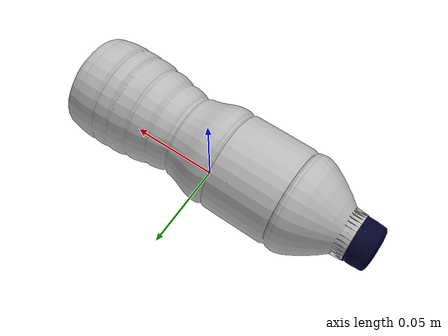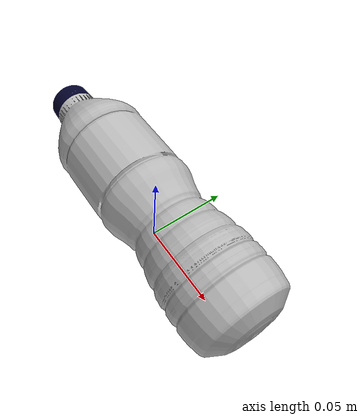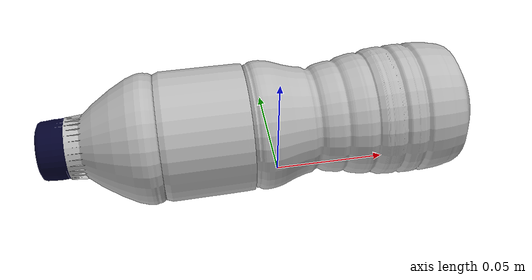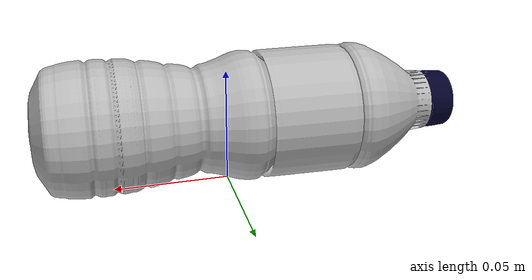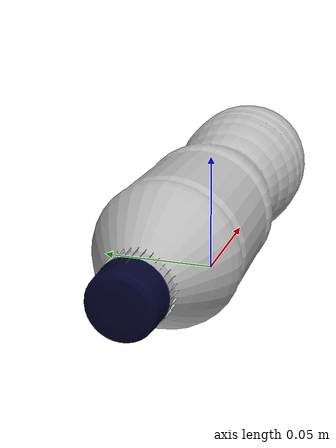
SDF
<?xml version="1.0" ?>
<sdf version="1.6">
  <model name="plastic_bottle_lay">
    <link name="link">

      <inertial>

        <mass>0.1</mass>
        <inertia>
            <ixy>0</ixy>
            <ixz>0</ixz>
            <iyz>0</iyz>
            <ixx>0.05288</ixx>
            <iyy>0.05288</iyy>
            <izz>0.09132</izz>
          </inertia>
      </inertial>

      <collision name="collision">
        <geometry>
          <mesh>
            <uri>model://plastic_bottle_lay/meshes/plastic_bottle_lay.dae</uri>
            <scale>1 1 1</scale>
          </mesh>
        </geometry>

      </collision>

      <visual name="visual">
	    <geometry>
          <mesh>
            <uri>model://plastic_bottle_lay/meshes/plastic_bottle_lay.dae</uri>
          </mesh>
        </geometry>
      <meta> <layer> 1 </layer></meta>
</visual>
    </link>
  </model>
</sdf>
